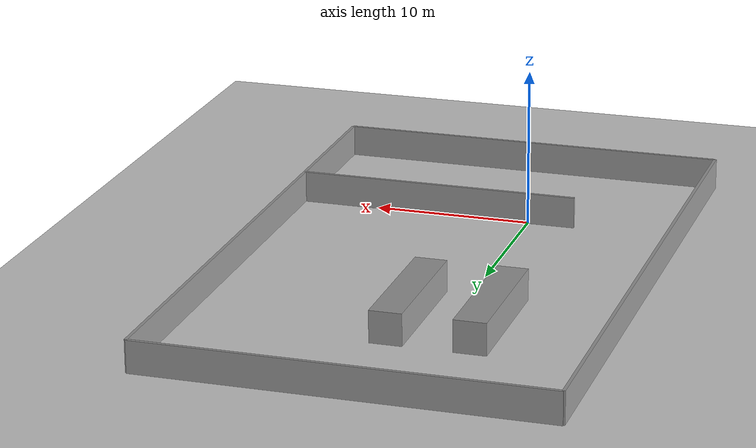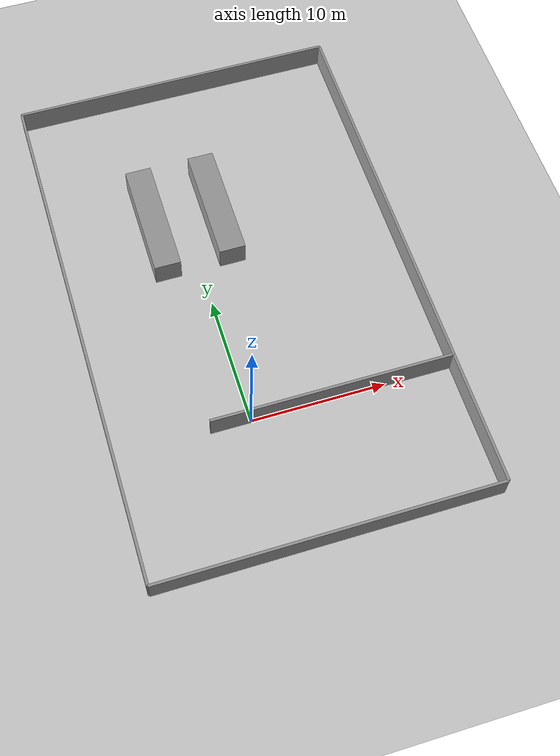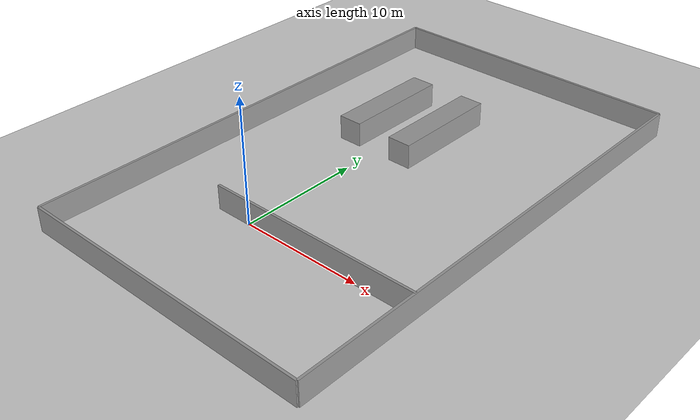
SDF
<?xml version="1.0"?>
<sdf version="1.6">
  <world name="default">
    <include>
      <uri>model://ground_plane</uri>
    </include>
    <include>
      <uri>model://sun</uri>
    </include>
    <physics type="ode">
      <real_time_update_rate>1000.0</real_time_update_rate>
      <max_step_size>0.001</max_step_size>
    </physics>

    <model name='wall_0'>
      <pose>2.5 30.0 1.0 0 0 0</pose>
      <link name='link'>
        <collision name='collision'>
          <geometry>
            <box>
              <size>25.0 0.2 2.0</size>
            </box>
          </geometry>
        </collision>
        <visual name='visual'>
          <geometry>
            <box>
              <size>25.0 0.2 2.0</size>
            </box>
          </geometry>
          <material>
            <script>
              <uri>file://media/materials/scripts/gazebo.material</uri>
              <name>Gazebo/Grey</name>
            </script>
          </material>
        </visual>
      </link>
      <static>1</static>
    </model>

    <model name='wall_1'>
      <pose>2.5 -10.0 1.0 0 0 0</pose>
      <link name='link'>
        <collision name='collision'>
          <geometry>
            <box>
              <size>25.0 0.2 2.0</size>
            </box>
          </geometry>
        </collision>
        <visual name='visual'>
          <geometry>
            <box>
              <size>25.0 0.2 2.0</size>
            </box>
          </geometry>
          <material>
            <script>
              <uri>file://media/materials/scripts/gazebo.material</uri>
              <name>Gazebo/Grey</name>
            </script>
          </material>
        </visual>
      </link>
      <static>1</static>
    </model>

    <model name='wall_2'>
      <pose>-10.0 10.0 1.0 0 0 0</pose>
      <link name='link'>
        <collision name='collision'>
          <geometry>
            <box>
              <size>0.2 40.0 2.0</size>
            </box>
          </geometry>
        </collision>
        <visual name='visual'>
          <geometry>
            <box>
              <size>0.2 40.0 2.0</size>
            </box>
          </geometry>
          <material>
            <script>
              <uri>file://media/materials/scripts/gazebo.material</uri>
              <name>Gazebo/Grey</name>
            </script>
          </material>
        </visual>
      </link>
      <static>1</static>
    </model>

    <model name='wall_3'>
      <pose>15.0 10.0 1.0 0 0 0</pose>
      <link name='link'>
        <collision name='collision'>
          <geometry>
            <box>
              <size>0.2 40.0 2.0</size>
            </box>
          </geometry>
        </collision>
        <visual name='visual'>
          <geometry>
            <box>
              <size>0.2 40.0 2.0</size>
            </box>
          </geometry>
          <material>
            <script>
              <uri>file://media/materials/scripts/gazebo.material</uri>
              <name>Gazebo/Grey</name>
            </script>
          </material>
        </visual>
      </link>
      <static>1</static>
    </model>

    <model name='wall_4'>
      <pose>-2.5 17.5 1.0 0 0 0</pose>
      <link name='link'>
        <collision name='collision'>
          <geometry>
            <box>
              <size>2.0 9.0 2.0</size>
            </box>
          </geometry>
        </collision>
        <visual name='visual'>
          <geometry>
            <box>
              <size>2.0 9.0 2.0</size>
            </box>
          </geometry>
          <material>
            <script>
              <uri>file://media/materials/scripts/gazebo.material</uri>
              <name>Gazebo/Grey</name>
            </script>
          </material>
        </visual>
      </link>
      <static>1</static>
    </model>

    <model name='wall_5'>
      <pose>2.5 17.5 1.0 0 0 0</pose>
      <link name='link'>
        <collision name='collision'>
          <geometry>
            <box>
              <size>2.0 9.0 2.0</size>
            </box>
          </geometry>
        </collision>
        <visual name='visual'>
          <geometry>
            <box>
              <size>2.0 9.0 2.0</size>
            </box>
          </geometry>
          <material>
            <script>
              <uri>file://media/materials/scripts/gazebo.material</uri>
              <name>Gazebo/Grey</name>
            </script>
          </material>
        </visual>
      </link>
      <static>1</static>
    </model>

    <model name='wall_6'>
      <pose>6.0 0.0 1.0 0 0 0</pose>
      <link name='link'>
        <collision name='collision'>
          <geometry>
            <box>
              <size>18.0 0.2 2.0</size>
            </box>
          </geometry>
        </collision>
        <visual name='visual'>
          <geometry>
            <box>
              <size>18.0 0.2 2.0</size>
            </box>
          </geometry>
          <material>
            <script>
              <uri>file://media/materials/scripts/gazebo.material</uri>
              <name>Gazebo/Grey</name>
            </script>
          </material>
        </visual>
      </link>
      <static>1</static>
    </model>

  </world>
</sdf>
